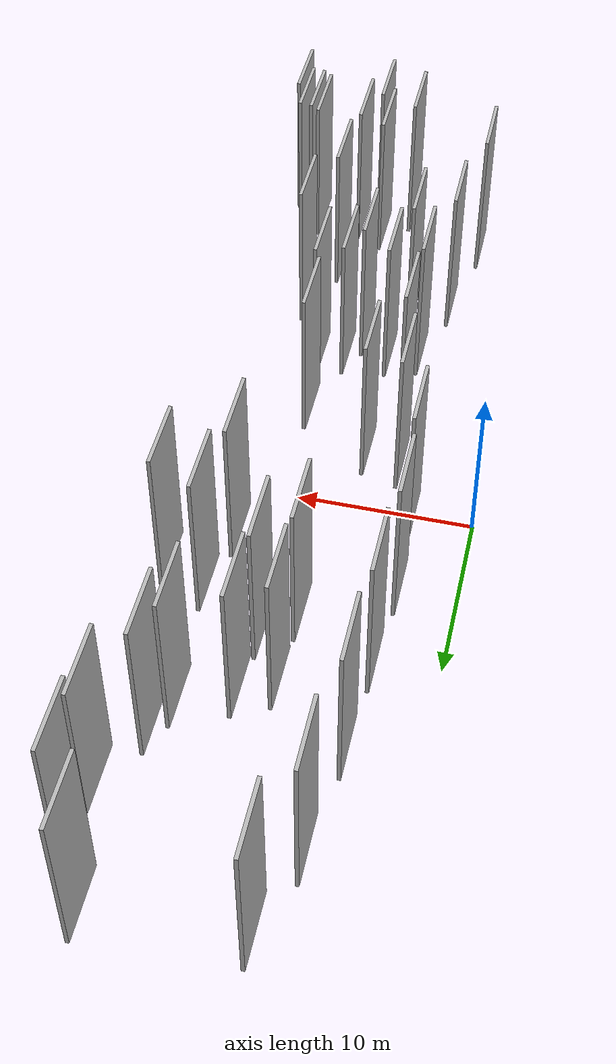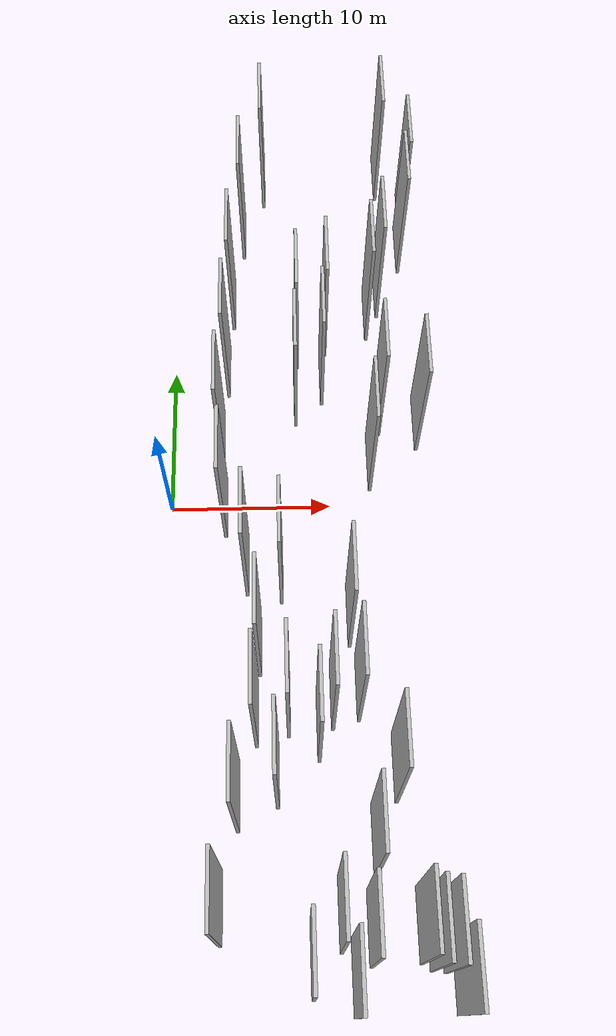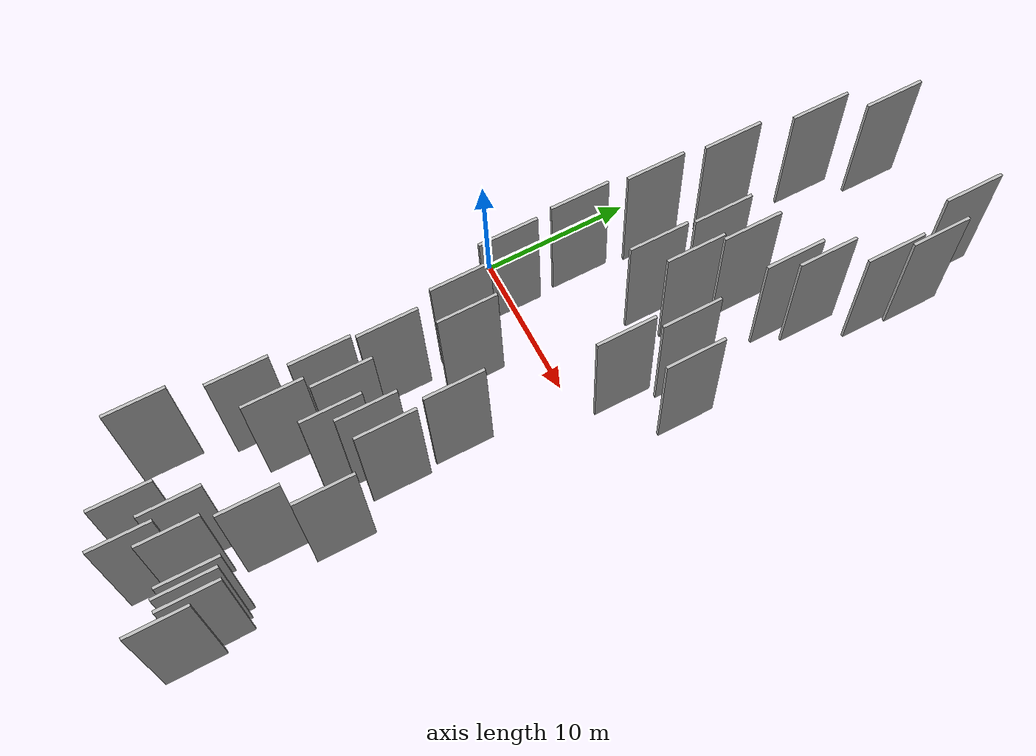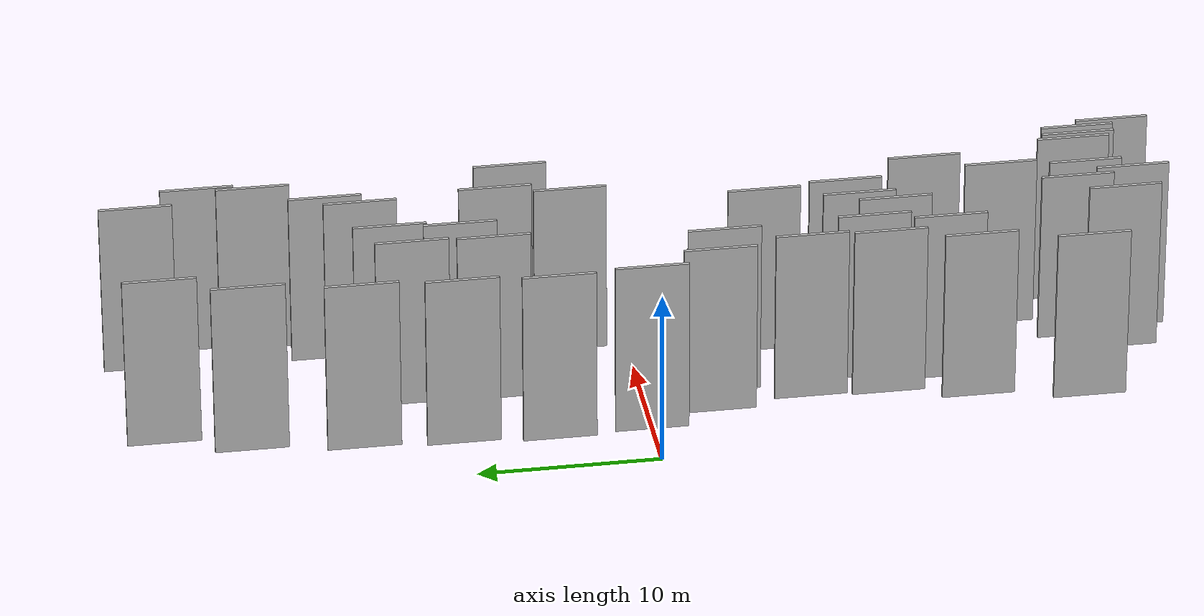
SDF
<sdf version="1.6">
 <world name="default">
  <scene>
   <sky><clouds><speed>12</speed></clouds></sky>
   <ambient>0.4 0.4 0.4 1</ambient>
   <background>0.7 0.7 0.7 1</background>
   <shadows>1</shadows>
  </scene>
  <gravity>0 0 -9.8066</gravity>
  <magnetic_field>6e-06 2.3e-05 -4.2e-05</magnetic_field>
  <physics default="0" name="default_physics" type="ode">
   <ode>
    <solver>
     <type>quick</type>
     <iters>10</iters>
     <sor>1.0</sor>
     <use_dynamic_moi_rescaling>0</use_dynamic_moi_rescaling>
    </solver>
    <constraints>
     <cfm>0</cfm>
     <erp>0.2</erp>
     <contact_max_correcting_vel>100</contact_max_correcting_vel>
     <contact_surface_layer>0.001</contact_surface_layer>
    </constraints>
   </ode>
   <max_step_size>0.004</max_step_size>
   <real_time_factor>1</real_time_factor>
   <real_time_update_rate>250</real_time_update_rate>
  </physics>
  <light name="sun" type="directional">
   <pose>0 0 10 0 0 0</pose>
   <diffuse>0.8 0.8 0.8 1</diffuse>
   <specular>0.2 0.2 0.2 1</specular>
   <attenuation>
    <range>1000</range>
    <constant>0.9</constant>
    <linear>0.01</linear>
    <quadratic>0.001</quadratic>
   </attenuation>
   <direction>-0.5 0.1 -0.9</direction>
  </light>
  <model name="grey_wall_1">
   <static>1</static>
   <pose>6.8559 -4.5022 0.0 0.000000 0.000000 1.570796</pose>
   <link name="link">
    <pose>0 0 5.00 0 0 0</pose>
    <collision name="collision"><geometry><box><size>4.00 0.2 10.00</size></box></geometry></collision>
    <visual name="visual">
     <cast_shadows>0</cast_shadows>
     <geometry><box><size>4.00 0.2 10.00</size></box></geometry>
     <material>
      <script>
       <uri>model://HANNAS_wall/materials/scripts</uri>
       <uri>model://HANNAS_wall/materials/textures</uri>
       <name>vrc/HANNAS_wall</name>
      </script>
     </material>
    </visual>
   </link>
  </model>
  <model name="grey_wall_2">
   <static>1</static>
   <pose>11.3579 -25.2479 0.0 0.000000 0.000000 1.570796</pose>
   <link name="link">
    <pose>0 0 5.00 0 0 0</pose>
    <collision name="collision"><geometry><box><size>4.00 0.2 10.00</size></box></geometry></collision>
    <visual name="visual">
     <cast_shadows>0</cast_shadows>
     <geometry><box><size>4.00 0.2 10.00</size></box></geometry>
     <material>
      <script>
       <uri>model://HANNAS_wall/materials/scripts</uri>
       <uri>model://HANNAS_wall/materials/textures</uri>
       <name>vrc/HANNAS_wall</name>
      </script>
     </material>
    </visual>
   </link>
  </model>
  <model name="grey_wall_3">
   <static>1</static>
   <pose>15.4135 20.0648 0.0 0.000000 0.000000 1.570796</pose>
   <link name="link">
    <pose>0 0 5.00 0 0 0</pose>
    <collision name="collision"><geometry><box><size>4.00 0.2 10.00</size></box></geometry></collision>
    <visual name="visual">
     <cast_shadows>0</cast_shadows>
     <geometry><box><size>4.00 0.2 10.00</size></box></geometry>
     <material>
      <script>
       <uri>model://HANNAS_wall/materials/scripts</uri>
       <uri>model://HANNAS_wall/materials/textures</uri>
       <name>vrc/HANNAS_wall</name>
      </script>
     </material>
    </visual>
   </link>
  </model>
  <model name="grey_wall_4">
   <static>1</static>
   <pose>4.1909 -18.0647 0.0 0.000000 0.000000 1.570796</pose>
   <link name="link">
    <pose>0 0 5.00 0 0 0</pose>
    <collision name="collision"><geometry><box><size>4.00 0.2 10.00</size></box></geometry></collision>
    <visual name="visual">
     <cast_shadows>0</cast_shadows>
     <geometry><box><size>4.00 0.2 10.00</size></box></geometry>
     <material>
      <script>
       <uri>model://HANNAS_wall/materials/scripts</uri>
       <uri>model://HANNAS_wall/materials/textures</uri>
       <name>vrc/HANNAS_wall</name>
      </script>
     </material>
    </visual>
   </link>
  </model>
  <model name="grey_wall_5">
   <static>1</static>
   <pose>3.1876 5.0392 0.0 0.000000 0.000000 1.570796</pose>
   <link name="link">
    <pose>0 0 5.00 0 0 0</pose>
    <collision name="collision"><geometry><box><size>4.00 0.2 10.00</size></box></geometry></collision>
    <visual name="visual">
     <cast_shadows>0</cast_shadows>
     <geometry><box><size>4.00 0.2 10.00</size></box></geometry>
     <material>
      <script>
       <uri>model://HANNAS_wall/materials/scripts</uri>
       <uri>model://HANNAS_wall/materials/textures</uri>
       <name>vrc/HANNAS_wall</name>
      </script>
     </material>
    </visual>
   </link>
  </model>
  <model name="grey_wall_6">
   <static>1</static>
   <pose>12.9101 14.4997 0.0 0.000000 0.000000 1.570796</pose>
   <link name="link">
    <pose>0 0 5.00 0 0 0</pose>
    <collision name="collision"><geometry><box><size>4.00 0.2 10.00</size></box></geometry></collision>
    <visual name="visual">
     <cast_shadows>0</cast_shadows>
     <geometry><box><size>4.00 0.2 10.00</size></box></geometry>
     <material>
      <script>
       <uri>model://HANNAS_wall/materials/scripts</uri>
       <uri>model://HANNAS_wall/materials/textures</uri>
       <name>vrc/HANNAS_wall</name>
      </script>
     </material>
    </visual>
   </link>
  </model>
  <model name="grey_wall_7">
   <static>1</static>
   <pose>5.9956 26.1054 0.0 0.000000 0.000000 1.570796</pose>
   <link name="link">
    <pose>0 0 5.00 0 0 0</pose>
    <collision name="collision"><geometry><box><size>4.00 0.2 10.00</size></box></geometry></collision>
    <visual name="visual">
     <cast_shadows>0</cast_shadows>
     <geometry><box><size>4.00 0.2 10.00</size></box></geometry>
     <material>
      <script>
       <uri>model://HANNAS_wall/materials/scripts</uri>
       <uri>model://HANNAS_wall/materials/textures</uri>
       <name>vrc/HANNAS_wall</name>
      </script>
     </material>
    </visual>
   </link>
  </model>
  <model name="grey_wall_8">
   <static>1</static>
   <pose>9.7814 -24.5018 0.0 0.000000 0.000000 1.570796</pose>
   <link name="link">
    <pose>0 0 5.00 0 0 0</pose>
    <collision name="collision"><geometry><box><size>4.00 0.2 10.00</size></box></geometry></collision>
    <visual name="visual">
     <cast_shadows>0</cast_shadows>
     <geometry><box><size>4.00 0.2 10.00</size></box></geometry>
     <material>
      <script>
       <uri>model://HANNAS_wall/materials/scripts</uri>
       <uri>model://HANNAS_wall/materials/textures</uri>
       <name>vrc/HANNAS_wall</name>
      </script>
     </material>
    </visual>
   </link>
  </model>
  <model name="grey_wall_9">
   <static>1</static>
   <pose>5.4984 -9.0573 0.0 0.000000 0.000000 1.570796</pose>
   <link name="link">
    <pose>0 0 5.00 0 0 0</pose>
    <collision name="collision"><geometry><box><size>4.00 0.2 10.00</size></box></geometry></collision>
    <visual name="visual">
     <cast_shadows>0</cast_shadows>
     <geometry><box><size>4.00 0.2 10.00</size></box></geometry>
     <material>
      <script>
       <uri>model://HANNAS_wall/materials/scripts</uri>
       <uri>model://HANNAS_wall/materials/textures</uri>
       <name>vrc/HANNAS_wall</name>
      </script>
     </material>
    </visual>
   </link>
  </model>
  <model name="grey_wall_10">
   <static>1</static>
   <pose>15.3268 -25.6076 0.0 0.000000 0.000000 1.570796</pose>
   <link name="link">
    <pose>0 0 5.00 0 0 0</pose>
    <collision name="collision"><geometry><box><size>4.00 0.2 10.00</size></box></geometry></collision>
    <visual name="visual">
     <cast_shadows>0</cast_shadows>
     <geometry><box><size>4.00 0.2 10.00</size></box></geometry>
     <material>
      <script>
       <uri>model://HANNAS_wall/materials/scripts</uri>
       <uri>model://HANNAS_wall/materials/textures</uri>
       <name>vrc/HANNAS_wall</name>
      </script>
     </material>
    </visual>
   </link>
  </model>
  <model name="grey_wall_11">
   <static>1</static>
   <pose>7.9757 7.8814 0.0 0.000000 0.000000 1.570796</pose>
   <link name="link">
    <pose>0 0 5.00 0 0 0</pose>
    <collision name="collision"><geometry><box><size>4.00 0.2 10.00</size></box></geometry></collision>
    <visual name="visual">
     <cast_shadows>0</cast_shadows>
     <geometry><box><size>4.00 0.2 10.00</size></box></geometry>
     <material>
      <script>
       <uri>model://HANNAS_wall/materials/scripts</uri>
       <uri>model://HANNAS_wall/materials/textures</uri>
       <name>vrc/HANNAS_wall</name>
      </script>
     </material>
    </visual>
   </link>
  </model>
  <model name="grey_wall_12">
   <static>1</static>
   <pose>14.5904 -25.5011 0.0 0.000000 0.000000 1.570796</pose>
   <link name="link">
    <pose>0 0 5.00 0 0 0</pose>
    <collision name="collision"><geometry><box><size>4.00 0.2 10.00</size></box></geometry></collision>
    <visual name="visual">
     <cast_shadows>0</cast_shadows>
     <geometry><box><size>4.00 0.2 10.00</size></box></geometry>
     <material>
      <script>
       <uri>model://HANNAS_wall/materials/scripts</uri>
       <uri>model://HANNAS_wall/materials/textures</uri>
       <name>vrc/HANNAS_wall</name>
      </script>
     </material>
    </visual>
   </link>
  </model>
  <model name="grey_wall_13">
   <static>1</static>
   <pose>14.0716 -25.1356 0.0 0.000000 0.000000 1.570796</pose>
   <link name="link">
    <pose>0 0 5.00 0 0 0</pose>
    <collision name="collision"><geometry><box><size>4.00 0.2 10.00</size></box></geometry></collision>
    <visual name="visual">
     <cast_shadows>0</cast_shadows>
     <geometry><box><size>4.00 0.2 10.00</size></box></geometry>
     <material>
      <script>
       <uri>model://HANNAS_wall/materials/scripts</uri>
       <uri>model://HANNAS_wall/materials/textures</uri>
       <name>vrc/HANNAS_wall</name>
      </script>
     </material>
    </visual>
   </link>
  </model>
  <model name="grey_wall_14">
   <static>1</static>
   <pose>7.1500 -12.7600 0.0 0.000000 0.000000 1.570796</pose>
   <link name="link">
    <pose>0 0 5.00 0 0 0</pose>
    <collision name="collision"><geometry><box><size>4.00 0.2 10.00</size></box></geometry></collision>
    <visual name="visual">
     <cast_shadows>0</cast_shadows>
     <geometry><box><size>4.00 0.2 10.00</size></box></geometry>
     <material>
      <script>
       <uri>model://HANNAS_wall/materials/scripts</uri>
       <uri>model://HANNAS_wall/materials/textures</uri>
       <name>vrc/HANNAS_wall</name>
      </script>
     </material>
    </visual>
   </link>
  </model>
  <model name="grey_wall_15">
   <static>1</static>
   <pose>15.7884 5.9062 0.0 0.000000 0.000000 1.570796</pose>
   <link name="link">
    <pose>0 0 5.00 0 0 0</pose>
    <collision name="collision"><geometry><box><size>4.00 0.2 10.00</size></box></geometry></collision>
    <visual name="visual">
     <cast_shadows>0</cast_shadows>
     <geometry><box><size>4.00 0.2 10.00</size></box></geometry>
     <material>
      <script>
       <uri>model://HANNAS_wall/materials/scripts</uri>
       <uri>model://HANNAS_wall/materials/textures</uri>
       <name>vrc/HANNAS_wall</name>
      </script>
     </material>
    </visual>
   </link>
  </model>
  <model name="grey_wall_16">
   <static>1</static>
   <pose>10.0310 13.2496 0.0 0.000000 0.000000 1.570796</pose>
   <link name="link">
    <pose>0 0 5.00 0 0 0</pose>
    <collision name="collision"><geometry><box><size>4.00 0.2 10.00</size></box></geometry></collision>
    <visual name="visual">
     <cast_shadows>0</cast_shadows>
     <geometry><box><size>4.00 0.2 10.00</size></box></geometry>
     <material>
      <script>
       <uri>model://HANNAS_wall/materials/scripts</uri>
       <uri>model://HANNAS_wall/materials/textures</uri>
       <name>vrc/HANNAS_wall</name>
      </script>
     </material>
    </visual>
   </link>
  </model>
  <model name="grey_wall_17">
   <static>1</static>
   <pose>4.5697 21.5314 0.0 0.000000 0.000000 1.570796</pose>
   <link name="link">
    <pose>0 0 5.00 0 0 0</pose>
    <collision name="collision"><geometry><box><size>4.00 0.2 10.00</size></box></geometry></collision>
    <visual name="visual">
     <cast_shadows>0</cast_shadows>
     <geometry><box><size>4.00 0.2 10.00</size></box></geometry>
     <material>
      <script>
       <uri>model://HANNAS_wall/materials/scripts</uri>
       <uri>model://HANNAS_wall/materials/textures</uri>
       <name>vrc/HANNAS_wall</name>
      </script>
     </material>
    </visual>
   </link>
  </model>
  <model name="grey_wall_18">
   <static>1</static>
   <pose>10.4137 -27.6923 0.0 0.000000 0.000000 1.570796</pose>
   <link name="link">
    <pose>0 0 5.00 0 0 0</pose>
    <collision name="collision"><geometry><box><size>4.00 0.2 10.00</size></box></geometry></collision>
    <visual name="visual">
     <cast_shadows>0</cast_shadows>
     <geometry><box><size>4.00 0.2 10.00</size></box></geometry>
     <material>
      <script>
       <uri>model://HANNAS_wall/materials/scripts</uri>
       <uri>model://HANNAS_wall/materials/textures</uri>
       <name>vrc/HANNAS_wall</name>
      </script>
     </material>
    </visual>
   </link>
  </model>
  <model name="grey_wall_19">
   <static>1</static>
   <pose>5.2802 -13.3097 0.0 0.000000 0.000000 1.570796</pose>
   <link name="link">
    <pose>0 0 5.00 0 0 0</pose>
    <collision name="collision"><geometry><box><size>4.00 0.2 10.00</size></box></geometry></collision>
    <visual name="visual">
     <cast_shadows>0</cast_shadows>
     <geometry><box><size>4.00 0.2 10.00</size></box></geometry>
     <material>
      <script>
       <uri>model://HANNAS_wall/materials/scripts</uri>
       <uri>model://HANNAS_wall/materials/textures</uri>
       <name>vrc/HANNAS_wall</name>
      </script>
     </material>
    </visual>
   </link>
  </model>
  <model name="grey_wall_20">
   <static>1</static>
   <pose>3.5442 10.1956 0.0 0.000000 0.000000 1.570796</pose>
   <link name="link">
    <pose>0 0 5.00 0 0 0</pose>
    <collision name="collision"><geometry><box><size>4.00 0.2 10.00</size></box></geometry></collision>
    <visual name="visual">
     <cast_shadows>0</cast_shadows>
     <geometry><box><size>4.00 0.2 10.00</size></box></geometry>
     <material>
      <script>
       <uri>model://HANNAS_wall/materials/scripts</uri>
       <uri>model://HANNAS_wall/materials/textures</uri>
       <name>vrc/HANNAS_wall</name>
      </script>
     </material>
    </visual>
   </link>
  </model>
  <model name="grey_wall_21">
   <static>1</static>
   <pose>3.3948 -0.0028 0.0 0.000000 0.000000 1.570796</pose>
   <link name="link">
    <pose>0 0 5.00 0 0 0</pose>
    <collision name="collision"><geometry><box><size>4.00 0.2 10.00</size></box></geometry></collision>
    <visual name="visual">
     <cast_shadows>0</cast_shadows>
     <geometry><box><size>4.00 0.2 10.00</size></box></geometry>
     <material>
      <script>
       <uri>model://HANNAS_wall/materials/scripts</uri>
       <uri>model://HANNAS_wall/materials/textures</uri>
       <name>vrc/HANNAS_wall</name>
      </script>
     </material>
    </visual>
   </link>
  </model>
  <model name="grey_wall_22">
   <static>1</static>
   <pose>9.7297 -12.4024 0.0 0.000000 0.000000 1.570796</pose>
   <link name="link">
    <pose>0 0 5.00 0 0 0</pose>
    <collision name="collision"><geometry><box><size>4.00 0.2 10.00</size></box></geometry></collision>
    <visual name="visual">
     <cast_shadows>0</cast_shadows>
     <geometry><box><size>4.00 0.2 10.00</size></box></geometry>
     <material>
      <script>
       <uri>model://HANNAS_wall/materials/scripts</uri>
       <uri>model://HANNAS_wall/materials/textures</uri>
       <name>vrc/HANNAS_wall</name>
      </script>
     </material>
    </visual>
   </link>
  </model>
  <model name="grey_wall_23">
   <static>1</static>
   <pose>11.2669 -11.9047 0.0 0.000000 0.000000 1.570796</pose>
   <link name="link">
    <pose>0 0 5.00 0 0 0</pose>
    <collision name="collision"><geometry><box><size>4.00 0.2 10.00</size></box></geometry></collision>
    <visual name="visual">
     <cast_shadows>0</cast_shadows>
     <geometry><box><size>4.00 0.2 10.00</size></box></geometry>
     <material>
      <script>
       <uri>model://HANNAS_wall/materials/scripts</uri>
       <uri>model://HANNAS_wall/materials/textures</uri>
       <name>vrc/HANNAS_wall</name>
      </script>
     </material>
    </visual>
   </link>
  </model>
  <model name="grey_wall_24">
   <static>1</static>
   <pose>15.8792 -27.6604 0.0 0.000000 0.000000 1.570796</pose>
   <link name="link">
    <pose>0 0 5.00 0 0 0</pose>
    <collision name="collision"><geometry><box><size>4.00 0.2 10.00</size></box></geometry></collision>
    <visual name="visual">
     <cast_shadows>0</cast_shadows>
     <geometry><box><size>4.00 0.2 10.00</size></box></geometry>
     <material>
      <script>
       <uri>model://HANNAS_wall/materials/scripts</uri>
       <uri>model://HANNAS_wall/materials/textures</uri>
       <name>vrc/HANNAS_wall</name>
      </script>
     </material>
    </visual>
   </link>
  </model>
  <model name="grey_wall_25">
   <static>1</static>
   <pose>10.9034 -7.3532 0.0 0.000000 0.000000 1.570796</pose>
   <link name="link">
    <pose>0 0 5.00 0 0 0</pose>
    <collision name="collision"><geometry><box><size>4.00 0.2 10.00</size></box></geometry></collision>
    <visual name="visual">
     <cast_shadows>0</cast_shadows>
     <geometry><box><size>4.00 0.2 10.00</size></box></geometry>
     <material>
      <script>
       <uri>model://HANNAS_wall/materials/scripts</uri>
       <uri>model://HANNAS_wall/materials/textures</uri>
       <name>vrc/HANNAS_wall</name>
      </script>
     </material>
    </visual>
   </link>
  </model>
  <model name="grey_wall_26">
   <static>1</static>
   <pose>8.1991 -26.8131 0.0 0.000000 0.000000 1.570796</pose>
   <link name="link">
    <pose>0 0 5.00 0 0 0</pose>
    <collision name="collision"><geometry><box><size>4.00 0.2 10.00</size></box></geometry></collision>
    <visual name="visual">
     <cast_shadows>0</cast_shadows>
     <geometry><box><size>4.00 0.2 10.00</size></box></geometry>
     <material>
      <script>
       <uri>model://HANNAS_wall/materials/scripts</uri>
       <uri>model://HANNAS_wall/materials/textures</uri>
       <name>vrc/HANNAS_wall</name>
      </script>
     </material>
    </visual>
   </link>
  </model>
  <model name="grey_wall_27">
   <static>1</static>
   <pose>12.6215 3.0556 0.0 0.000000 0.000000 1.570796</pose>
   <link name="link">
    <pose>0 0 5.00 0 0 0</pose>
    <collision name="collision"><geometry><box><size>4.00 0.2 10.00</size></box></geometry></collision>
    <visual name="visual">
     <cast_shadows>0</cast_shadows>
     <geometry><box><size>4.00 0.2 10.00</size></box></geometry>
     <material>
      <script>
       <uri>model://HANNAS_wall/materials/scripts</uri>
       <uri>model://HANNAS_wall/materials/textures</uri>
       <name>vrc/HANNAS_wall</name>
      </script>
     </material>
    </visual>
   </link>
  </model>
  <model name="grey_wall_28">
   <static>1</static>
   <pose>13.7161 16.3150 0.0 0.000000 0.000000 1.570796</pose>
   <link name="link">
    <pose>0 0 5.00 0 0 0</pose>
    <collision name="collision"><geometry><box><size>4.00 0.2 10.00</size></box></geometry></collision>
    <visual name="visual">
     <cast_shadows>0</cast_shadows>
     <geometry><box><size>4.00 0.2 10.00</size></box></geometry>
     <material>
      <script>
       <uri>model://HANNAS_wall/materials/scripts</uri>
       <uri>model://HANNAS_wall/materials/textures</uri>
       <name>vrc/HANNAS_wall</name>
      </script>
     </material>
    </visual>
   </link>
  </model>
  <model name="grey_wall_29">
   <static>1</static>
   <pose>6.4519 -16.8108 0.0 0.000000 0.000000 1.570796</pose>
   <link name="link">
    <pose>0 0 5.00 0 0 0</pose>
    <collision name="collision"><geometry><box><size>4.00 0.2 10.00</size></box></geometry></collision>
    <visual name="visual">
     <cast_shadows>0</cast_shadows>
     <geometry><box><size>4.00 0.2 10.00</size></box></geometry>
     <material>
      <script>
       <uri>model://HANNAS_wall/materials/scripts</uri>
       <uri>model://HANNAS_wall/materials/textures</uri>
       <name>vrc/HANNAS_wall</name>
      </script>
     </material>
    </visual>
   </link>
  </model>
  <model name="grey_wall_30">
   <static>1</static>
   <pose>8.1371 12.2960 0.0 0.000000 0.000000 1.570796</pose>
   <link name="link">
    <pose>0 0 5.00 0 0 0</pose>
    <collision name="collision"><geometry><box><size>4.00 0.2 10.00</size></box></geometry></collision>
    <visual name="visual">
     <cast_shadows>0</cast_shadows>
     <geometry><box><size>4.00 0.2 10.00</size></box></geometry>
     <material>
      <script>
       <uri>model://HANNAS_wall/materials/scripts</uri>
       <uri>model://HANNAS_wall/materials/textures</uri>
       <name>vrc/HANNAS_wall</name>
      </script>
     </material>
    </visual>
   </link>
  </model>
  <model name="grey_wall_31">
   <static>1</static>
   <pose>4.7551 -3.9259 0.0 0.000000 0.000000 1.570796</pose>
   <link name="link">
    <pose>0 0 5.00 0 0 0</pose>
    <collision name="collision"><geometry><box><size>4.00 0.2 10.00</size></box></geometry></collision>
    <visual name="visual">
     <cast_shadows>0</cast_shadows>
     <geometry><box><size>4.00 0.2 10.00</size></box></geometry>
     <material>
      <script>
       <uri>model://HANNAS_wall/materials/scripts</uri>
       <uri>model://HANNAS_wall/materials/textures</uri>
       <name>vrc/HANNAS_wall</name>
      </script>
     </material>
    </visual>
   </link>
  </model>
  <model name="grey_wall_32">
   <static>1</static>
   <pose>3.2289 -24.0229 0.0 0.000000 0.000000 1.570796</pose>
   <link name="link">
    <pose>0 0 5.00 0 0 0</pose>
    <collision name="collision"><geometry><box><size>4.00 0.2 10.00</size></box></geometry></collision>
    <visual name="visual">
     <cast_shadows>0</cast_shadows>
     <geometry><box><size>4.00 0.2 10.00</size></box></geometry>
     <material>
      <script>
       <uri>model://HANNAS_wall/materials/scripts</uri>
       <uri>model://HANNAS_wall/materials/textures</uri>
       <name>vrc/HANNAS_wall</name>
      </script>
     </material>
    </visual>
   </link>
  </model>
  <model name="grey_wall_33">
   <static>1</static>
   <pose>15.7428 23.0789 0.0 0.000000 0.000000 1.570796</pose>
   <link name="link">
    <pose>0 0 5.00 0 0 0</pose>
    <collision name="collision"><geometry><box><size>4.00 0.2 10.00</size></box></geometry></collision>
    <visual name="visual">
     <cast_shadows>0</cast_shadows>
     <geometry><box><size>4.00 0.2 10.00</size></box></geometry>
     <material>
      <script>
       <uri>model://HANNAS_wall/materials/scripts</uri>
       <uri>model://HANNAS_wall/materials/textures</uri>
       <name>vrc/HANNAS_wall</name>
      </script>
     </material>
    </visual>
   </link>
  </model>
  <model name="grey_wall_34">
   <static>1</static>
   <pose>11.8135 -20.6363 0.0 0.000000 0.000000 1.570796</pose>
   <link name="link">
    <pose>0 0 5.00 0 0 0</pose>
    <collision name="collision"><geometry><box><size>4.00 0.2 10.00</size></box></geometry></collision>
    <visual name="visual">
     <cast_shadows>0</cast_shadows>
     <geometry><box><size>4.00 0.2 10.00</size></box></geometry>
     <material>
      <script>
       <uri>model://HANNAS_wall/materials/scripts</uri>
       <uri>model://HANNAS_wall/materials/textures</uri>
       <name>vrc/HANNAS_wall</name>
      </script>
     </material>
    </visual>
   </link>
  </model>
  <model name="grey_wall_35">
   <static>1</static>
   <pose>3.8699 15.5425 0.0 0.000000 0.000000 1.570796</pose>
   <link name="link">
    <pose>0 0 5.00 0 0 0</pose>
    <collision name="collision"><geometry><box><size>4.00 0.2 10.00</size></box></geometry></collision>
    <visual name="visual">
     <cast_shadows>0</cast_shadows>
     <geometry><box><size>4.00 0.2 10.00</size></box></geometry>
     <material>
      <script>
       <uri>model://HANNAS_wall/materials/scripts</uri>
       <uri>model://HANNAS_wall/materials/textures</uri>
       <name>vrc/HANNAS_wall</name>
      </script>
     </material>
    </visual>
   </link>
  </model>
  <model name="grey_wall_36">
   <static>1</static>
   <pose>13.3901 7.0520 0.0 0.000000 0.000000 1.570796</pose>
   <link name="link">
    <pose>0 0 5.00 0 0 0</pose>
    <collision name="collision"><geometry><box><size>4.00 0.2 10.00</size></box></geometry></collision>
    <visual name="visual">
     <cast_shadows>0</cast_shadows>
     <geometry><box><size>4.00 0.2 10.00</size></box></geometry>
     <material>
      <script>
       <uri>model://HANNAS_wall/materials/scripts</uri>
       <uri>model://HANNAS_wall/materials/textures</uri>
       <name>vrc/HANNAS_wall</name>
      </script>
     </material>
    </visual>
   </link>
  </model>
  <model name="grey_wall_37">
   <static>1</static>
   <pose>13.2074 -16.6312 0.0 0.000000 0.000000 1.570796</pose>
   <link name="link">
    <pose>0 0 5.00 0 0 0</pose>
    <collision name="collision"><geometry><box><size>4.00 0.2 10.00</size></box></geometry></collision>
    <visual name="visual">
     <cast_shadows>0</cast_shadows>
     <geometry><box><size>4.00 0.2 10.00</size></box></geometry>
     <material>
      <script>
       <uri>model://HANNAS_wall/materials/scripts</uri>
       <uri>model://HANNAS_wall/materials/textures</uri>
       <name>vrc/HANNAS_wall</name>
      </script>
     </material>
    </visual>
   </link>
  </model>
  <model name="grey_wall_38">
   <static>1</static>
   <pose>14.1299 26.5760 0.0 0.000000 0.000000 1.570796</pose>
   <link name="link">
    <pose>0 0 5.00 0 0 0</pose>
    <collision name="collision"><geometry><box><size>4.00 0.2 10.00</size></box></geometry></collision>
    <visual name="visual">
     <cast_shadows>0</cast_shadows>
     <geometry><box><size>4.00 0.2 10.00</size></box></geometry>
     <material>
      <script>
       <uri>model://HANNAS_wall/materials/scripts</uri>
       <uri>model://HANNAS_wall/materials/textures</uri>
       <name>vrc/HANNAS_wall</name>
      </script>
     </material>
    </visual>
   </link>
  </model>
  <model name="grey_wall_39">
   <static>1</static>
   <pose>8.8820 -14.2396 0.0 0.000000 0.000000 1.570796</pose>
   <link name="link">
    <pose>0 0 5.00 0 0 0</pose>
    <collision name="collision"><geometry><box><size>4.00 0.2 10.00</size></box></geometry></collision>
    <visual name="visual">
     <cast_shadows>0</cast_shadows>
     <geometry><box><size>4.00 0.2 10.00</size></box></geometry>
     <material>
      <script>
       <uri>model://HANNAS_wall/materials/scripts</uri>
       <uri>model://HANNAS_wall/materials/textures</uri>
       <name>vrc/HANNAS_wall</name>
      </script>
     </material>
    </visual>
   </link>
  </model>
  <model name="grey_wall_40">
   <static>1</static>
   <pose>9.7217 9.4625 0.0 0.000000 0.000000 1.570796</pose>
   <link name="link">
    <pose>0 0 5.00 0 0 0</pose>
    <collision name="collision"><geometry><box><size>4.00 0.2 10.00</size></box></geometry></collision>
    <visual name="visual">
     <cast_shadows>0</cast_shadows>
     <geometry><box><size>4.00 0.2 10.00</size></box></geometry>
     <material>
      <script>
       <uri>model://HANNAS_wall/materials/scripts</uri>
       <uri>model://HANNAS_wall/materials/textures</uri>
       <name>vrc/HANNAS_wall</name>
      </script>
     </material>
    </visual>
   </link>
  </model>
 </world>
</sdf>
